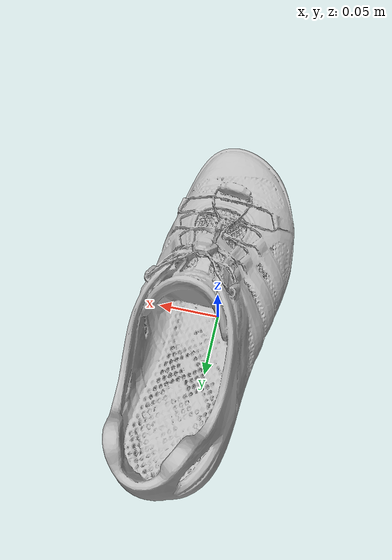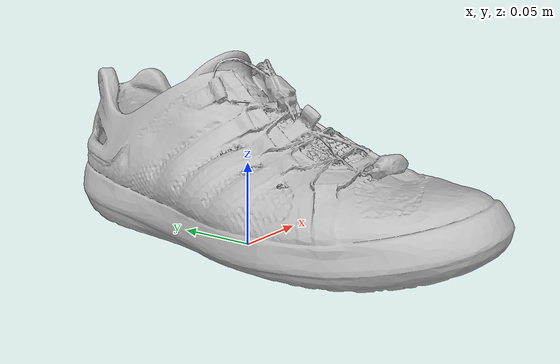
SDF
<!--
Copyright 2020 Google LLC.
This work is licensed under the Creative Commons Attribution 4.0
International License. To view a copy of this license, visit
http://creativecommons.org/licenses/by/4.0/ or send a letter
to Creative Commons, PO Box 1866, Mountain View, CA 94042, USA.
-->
<?xml version="1.0" ?>
<sdf version="1.6">
  <model name="CLIMACOOL_BOAT_BREEZE_IE6CyqSaDwN">
    <link name="link_0">
      <visual name="visual">
        <geometry>
          <mesh>
            <uri>/home/xiaomeng/code/robot_ws/src/robot_gazebo/panda_gazebo/worlds/CLIMACOOL_BOAT_BREEZE_IE6CyqSaDwN/meshes/model.obj</uri>
          </mesh>
        </geometry>
      </visual>
      <collision name="collision_0">
        <geometry>
          <mesh>
            <uri>/home/xiaomeng/code/robot_ws/src/robot_gazebo/panda_gazebo/worlds/CLIMACOOL_BOAT_BREEZE_IE6CyqSaDwN/meshes/model.obj</uri>
          </mesh>
        </geometry>
      </collision>
    </link>
  </model>
</sdf>
